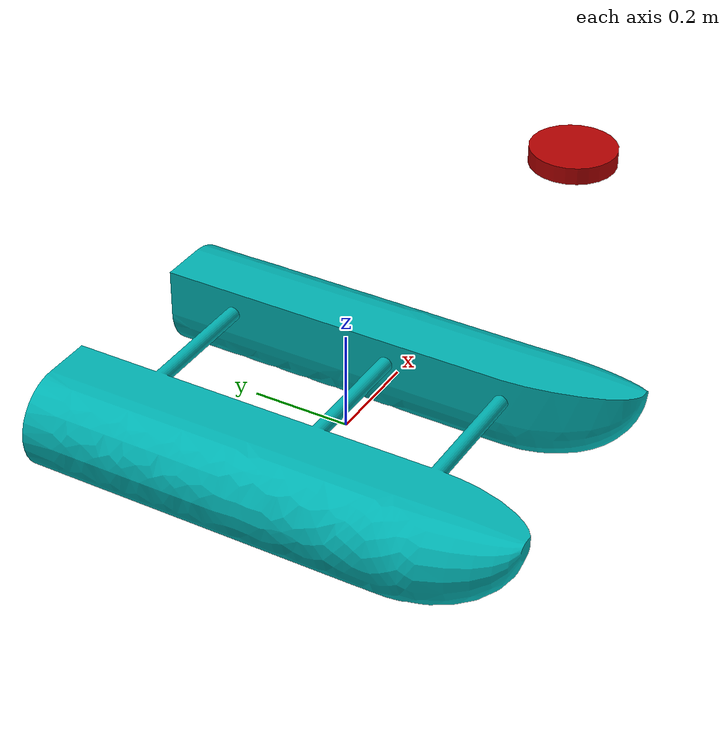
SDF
<?xml version='1.0'?>
<sdf version='1.7'>
  <model name='catamaran'>
    <enable_wind>true</enable_wind>

    <plugin filename="gz-sim-joint-state-publisher-system"
      name="gz::sim::systems::JointStatePublisher">
    </plugin>

    <link name="base_link">
      <visual name="visual">
        <pose>0 0 0 -1.5708 0 0</pose>
        <geometry>
          <mesh>
            <uri>model://maritime_simulation/models/catamaran/meshes/catamaran.stl</uri>
          </mesh>
        </geometry>
        <material>
          <!-- Teal material -->
          <ambient>0 0.5 0.5 1</ambient>
          <diffuse>0 0.7 0.7 1</diffuse>
          <specular>0 0 0 0</specular>
          <emissive>0 0 0 1</emissive>
        </material>
      </visual>
      <collision name="main_hull">
        <pose>0 0 0 -1.5708 0 0</pose>
        <geometry>
          <mesh>
            <uri>model://maritime_simulation/models/catamaran/meshes/catamaran.stl</uri>
          </mesh>
        </geometry>
      </collision>
      <inertial>
        <pose>0 0 0 -1.5708 -1.5708 0</pose>
        <pose>0 0 0 0 0 0</pose>
        <mass>15</mass>
        <inertia>
          <ixx>1.8625</ixx>
          <ixy>0</ixy>
          <iyy>1.3</iyy>
          <iyz>0</iyz>
          <izz>0.6625</izz>
        </inertia>
      </inertial>
    </link>

    <!-- Sensors -->
    <link name="imu_link">
      <inertial>
        <pose>0 0 0 0 0 0</pose>
        <mass>0.15</mass>
        <inertia>
          <ixx>0.00001</ixx>
          <ixy>0</ixy>
          <ixz>0</ixz>
          <iyy>0.00002</iyy>
          <iyz>0</iyz>
          <izz>0.00002</izz>
        </inertia>
      </inertial>
      <sensor name="imu_sensor" type="imu">
        <pose>0 0 0 3.141593 0 0</pose>
        <always_on>1</always_on>
        <update_rate>1000.0</update_rate>
      </sensor>
    </link>
    <joint name="imu_joint" type="revolute">
      <child>imu_link</child>
      <parent>base_link</parent>
      <axis>
        <xyz>0 0 1</xyz>
        <limit>
          <lower>0</lower>
          <upper>0</upper>
          <effort>0</effort>
          <velocity>0</velocity>
        </limit>
        <dynamics>
          <damping>1.0</damping>
        </dynamics>
      </axis>
    </joint>

    <frame name="lidar_frame" attached_to='left_lidar'>
      <pose>0.8 0 0.5 0 0 0</pose>
    </frame>

    <link name="left_lidar">
      <visual name="visual">
        <pose>1 0 0.1 0 0 0</pose>
        <geometry>
              <cylinder>
                <radius>0.1</radius>
                <length>0.04</length>
              </cylinder>
        </geometry>
        <material>
          <!-- Red material -->
          <ambient>0.5 0 0 1</ambient>
          <diffuse>0.7 0 0 1</diffuse>
          <specular>0 0 0 0</specular>
          <emissive>0.5 0 0 1</emissive>
        </material>

      </visual>
      <collision name="left_lidar">
        <geometry>
          <cylinder>
            <radius>0.05</radius>
            <length>0.04</length>
          </cylinder>
        </geometry>
      </collision>
      <inertial>
        <pose>0 0 0 0 0 0</pose>
        <mass>0.1</mass>
        <inertia>
          <ixx>0.00001</ixx>
          <ixy>0</ixy>
          <ixz>0</ixz>
          <iyy>0.00002</iyy>
          <iyz>0</iyz>
          <izz>0.00002</izz>
        </inertia>
      </inertial>

      <sensor name="gpu_lidar" type="gpu_ray">
        <pose> 0 0 0 0 0 0 </pose>
        <topic>/lidar/bow/port</topic>
        <visualize>false</visualize>
        <update_rate>10</update_rate>
        <ray>
          <scan>
            <horizontal>
                <samples>360</samples>
                <min_angle>-3.14</min_angle>
                <max_angle>3.14</max_angle>
            </horizontal>
            <vertical>
                <samples>1</samples>
                <resolution>0.01</resolution>
                <min_angle>0</min_angle>
                <max_angle>0</max_angle>
            </vertical>
          </scan>
          <range>
              <min>0.3</min>
              <max>12</max>
          </range>
          <noise>
            <type>gaussian</type>
            <mean>0.0</mean>
            <stddev>0.01</stddev>
          </noise>
        </ray>
        <always_on>1</always_on>
      </sensor>
    </link>

    <joint name="laser_joint" type="fixed">
      <parent>base_link</parent>
      <child>left_lidar</child>
      <origin xyz="0.1 0 0.175" rpy="0 0 0"/>
    </joint>

    <!-- Hydrodynamics plugin -->

    <plugin
        filename="gz-waves1-hydrodynamics-system"
        name="gz::sim::systems::Hydrodynamics">

        <enable>catamaran::base_link</enable>

        <hydrodynamics>
          <damping_on>1</damping_on>
          <viscous_drag_on>1</viscous_drag_on>
          <pressure_drag_on>1</pressure_drag_on>

          <!-- Linear and Angular Damping -->
          <cDampL1>1.0E-6</cDampL1>
          <cDampL2>1.0E-6</cDampL2>
          <cDampR1>1.0E-6</cDampR1>
          <cDampR2>1.0E-6</cDampR2>

          <!-- 'Pressure' Drag -->
          <cPDrag1>1.0E+2</cPDrag1>
          <cPDrag2>1.0E+2</cPDrag2>
          <fPDrag>0.4</fPDrag>
          <cSDrag1>1.0E+2</cSDrag1>
          <cSDrag2>1.0E+2</cSDrag2>
          <fSDrag>0.4</fSDrag>
          <vRDrag>1.0</vRDrag>
        </hydrodynamics>
    </plugin>

    <!-- ArduPilot plugin -->
    <plugin name="ArduPilotPlugin" filename="ArduPilotPlugin">
      <fdm_addr>127.0.0.1</fdm_addr>
      <fdm_port_in>9002</fdm_port_in>
      <connectionTimeoutMaxCount>5</connectionTimeoutMaxCount>
      <lock_step>1</lock_step>
      <modelXYZToAirplaneXForwardZDown>0 0 0 3.141593 0 0</modelXYZToAirplaneXForwardZDown>
      <gazeboXYZToNED>0 0 0 3.141593 0 1.57079632</gazeboXYZToNED>
      <imuName>imu_sensor</imuName>
    </plugin>

  </model>
</sdf>
